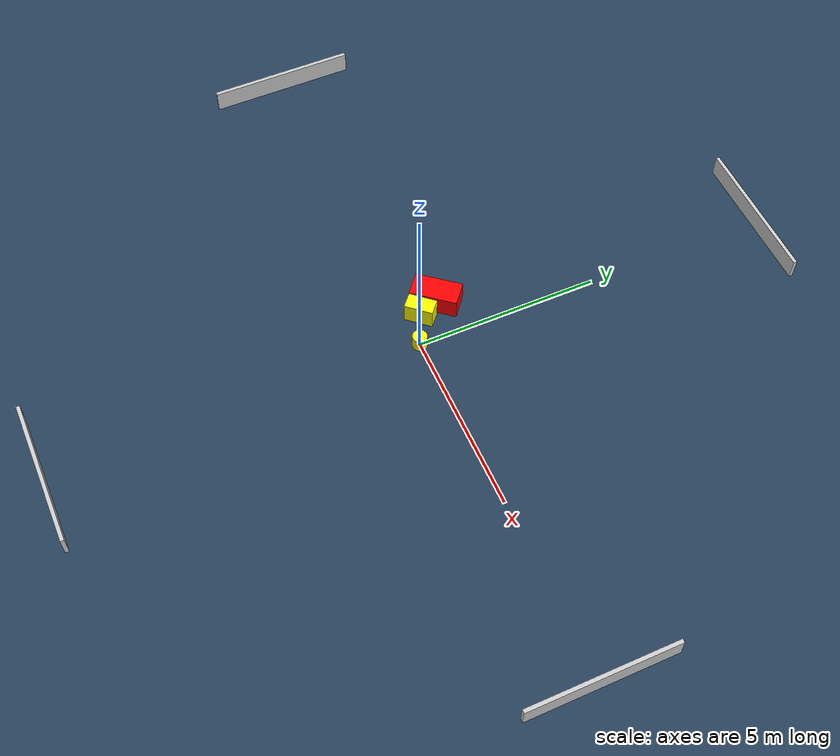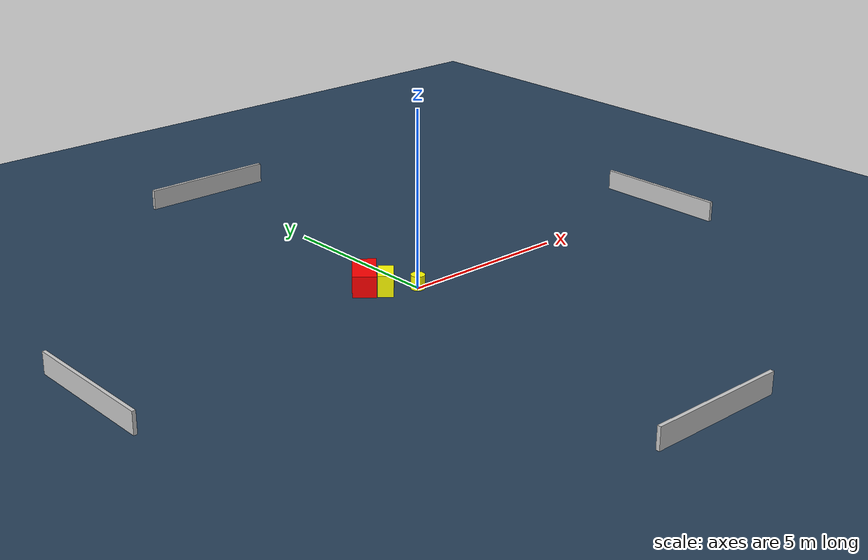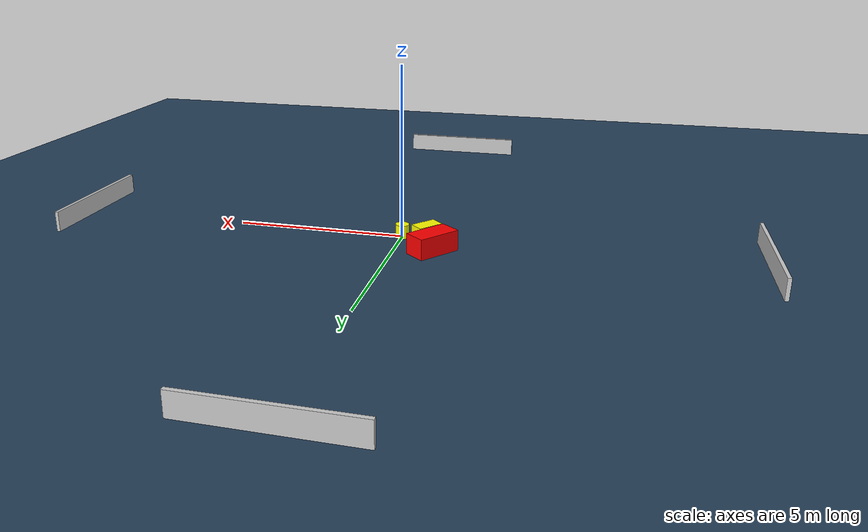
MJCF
<?xml version="1.0" ?>
<mujoco model="generated_environment">
  <option timestep="0.01" integrator="RK4" cone="elliptic"/>
  <default>
    <geom density="1"/>
  </default>
  <asset>
    <texture builtin="gradient" height="3072" name="skybox" rgb1="0.3 0.5 0.7" rgb2="0 0 0" type="skybox" width="512"/>
    <texture builtin="checker" height="300" name="groundplane" rgb1="0.2 0.3 0.4" rgb2="0.1 0.2 0.3" type="2d" width="300"/>
    <material name="groundplane" reflectance="0.2" texrepeat="5 5" texture="groundplane"/>
  </asset>
  <worldbody>
    <light dir="0 0 -1" directional="true" pos="0 0 1.5"/>
    <geom condim="3" friction="0.5 0.005 0.001" material="groundplane" name="floor" pos="0 0 0" size="0 0 0.05" type="plane"/>
    <body name="walls">
      <geom name="wall_1" condim="4" pos="-10.0 0.0 0.3" rgba="0.800000011920929 0.800000011920929 0.800000011920929 1.0" size="0.05 2.0 0.3" type="box"/>
      <geom name="wall_2" condim="4" pos="10.0 0.0 0.3" rgba="0.800000011920929 0.800000011920929 0.800000011920929 1.0" size="0.05 2.0 0.3" type="box"/>
      <geom name="wall_3" condim="4" pos="0.0 -10.0 0.3" rgba="0.800000011920929 0.800000011920929 0.800000011920929 1.0" size="2.0 0.05 0.3" type="box"/>
      <geom name="wall_4" condim="4" pos="0.0 10.0 0.3" rgba="0.800000011920929 0.800000011920929 0.800000011920929 1.0" size="2.0 0.05 0.3" type="box"/>
    </body>
    <body name="robot">
      <joint name="joint_x" type="slide" pos="0 0 0" axis="1 0 0"/>
      <joint name="joint_y" type="slide" pos="0 0 0" axis="0 1 0"/>
      <geom name="robot" type="cylinder" pos="0.0 0.0 0.2" size="0.2 0.2 0.0" mass="5.0" friction="1.0 0.005 0.0001" condim="4" rgba="1.0 1.0 0.0 1.0"/>
    </body>
    <body name="obstacle_1_movable">
      <geom name="obstacle_1_movable" condim="4" pos="-0.8056902619482776 0.37914300939137446 0.3" euler="0 0 228.46417434885566" friction="0.0 0.005 0.001" rgba="1.0 1.0 0.0 1.0" size="0.3838920149942037 0.21265437631542672 0.3" type="box" mass="0.1"/>
      <joint type="free"/>
    </body>
    <body name="obstacle_2_static">
      <geom name="obstacle_2_static" condim="4" pos="-1.0869281917022728 0.9397234644597848 0.3" euler="0 0 140.56149674102238" friction="0.0 0.005 0.001" rgba="1.0 0.0 0.0 1.0" size="0.3268410574867422 0.6438222209543407 0.3" type="box"/>
    </body>
  </worldbody>
  <actuator>
    <motor name="actuator_x" joint="joint_x" gear="1" ctrlrange="-1 1"/>
    <motor name="actuator_y" joint="joint_y" gear="1" ctrlrange="-1 1"/>
  </actuator>
</mujoco>
